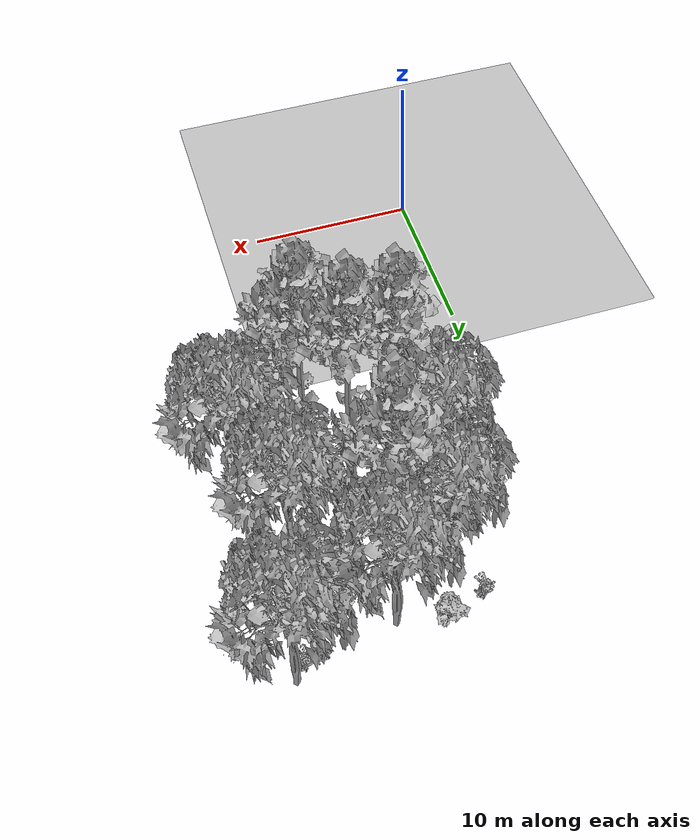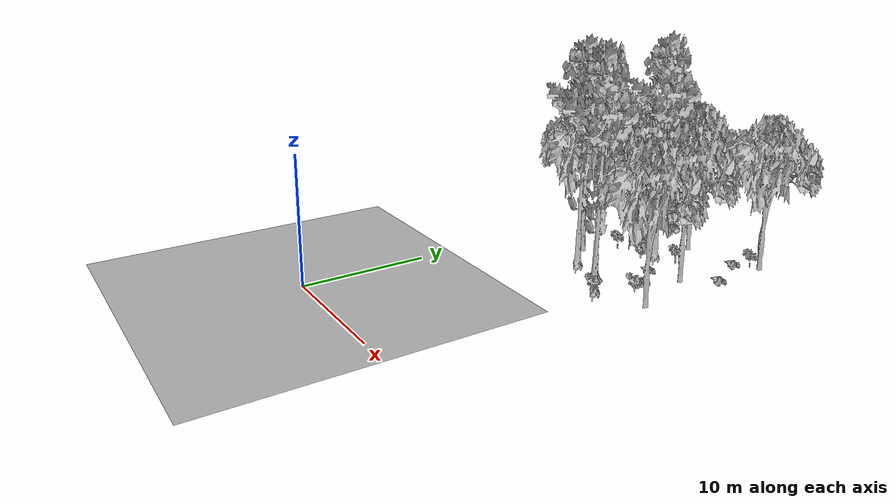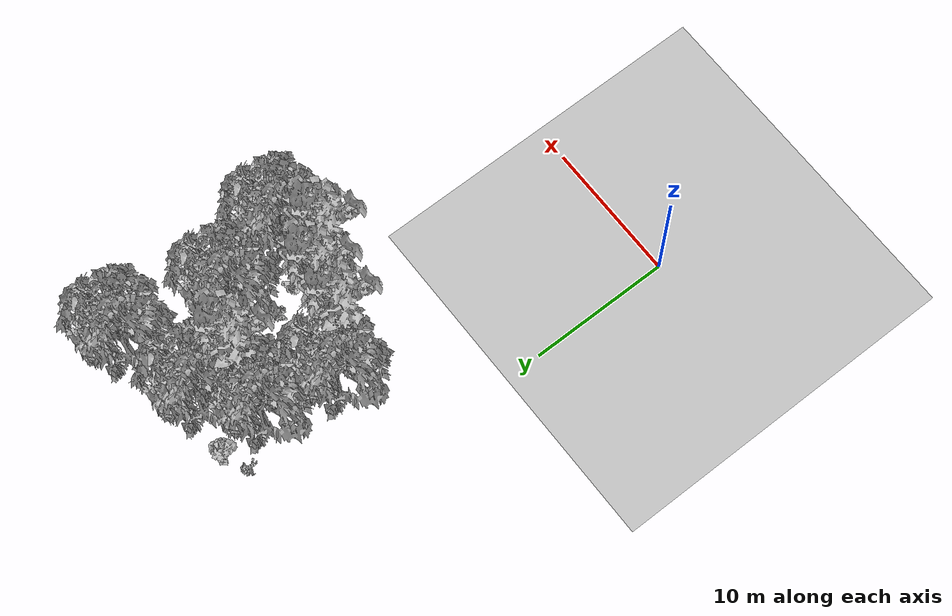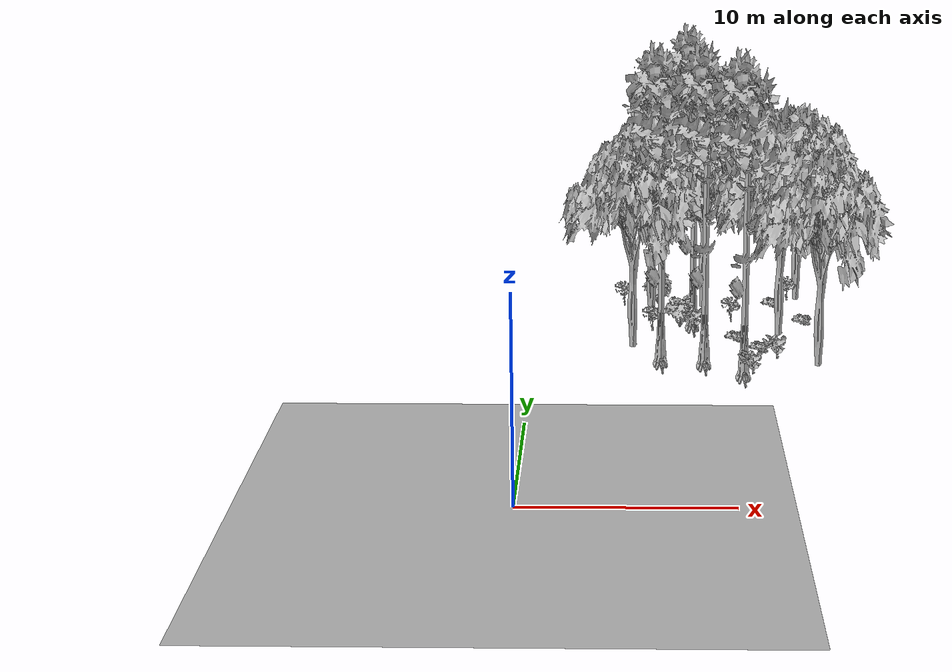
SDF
<sdf version="1.7">
 <world name="default">
  <model name="ground_plane">
   <static>1</static>
   <link name="link">
    <collision name="collision">
     <pose>-50 0 0 0 -0 0</pose>
     <geometry><plane><normal>0 0 1</normal><size>80 80</size></plane></geometry>
     <surface><contact><ode><min_depth>0.01</min_depth><max_vel>0</max_vel></ode></contact></surface>
    </collision>
    <visual name="grass">
     <cast_shadows>0</cast_shadows>
     <geometry>
      <mesh>
       <scale>0.46714285714285714 0.46714285714285714 0.1</scale>
       <uri>file://grass_plane/meshes/grass_plane.dae</uri>
      </mesh>
     </geometry>
    </visual>
   </link>
  </model>
  <model name="Tree 117">
   <static>1</static>
   <pose>5.402870050491956 21.748774080429428 0 1.57079 -0 0</pose>
   <link name="link">
    <collision name="collision">
     <geometry><mesh><scale>3.5 5 3.5</scale><uri>model://tree_2/meshes/tree_2.obj</uri></mesh></geometry>
    </collision>
    <visual name="visual">
     <geometry><mesh><scale>3.5 5 3.5</scale><uri>model://tree_2/meshes/tree_2.obj</uri></mesh></geometry>
    </visual>
   </link>
  </model>
  <model name="Tree 291">
   <static>1</static>
   <pose>6.542167297251503 26.611911763401423 0 1.57079 -0 0</pose>
   <link name="link">
    <collision name="collision">
     <geometry><mesh><scale>3.5 5 3.5</scale><uri>model://tree_2/meshes/tree_2.obj</uri></mesh></geometry>
    </collision>
    <visual name="visual">
     <geometry><mesh><scale>3.5 5 3.5</scale><uri>model://tree_2/meshes/tree_2.obj</uri></mesh></geometry>
    </visual>
   </link>
  </model>
  <model name="Tree 346">
   <static>1</static>
   <pose>11.453552056097458 17.775775433478998 0 1.57079 -0 0</pose>
   <link name="link">
    <collision name="collision">
     <geometry><mesh><scale>3.5 5 3.5</scale><uri>model://tree_9/meshes/tree_9.obj</uri></mesh></geometry>
    </collision>
    <visual name="visual">
     <geometry><mesh><scale>3.5 5 3.5</scale><uri>model://tree_9/meshes/tree_9.obj</uri></mesh></geometry>
    </visual>
   </link>
  </model>
  <model name="Tree 401">
   <static>1</static>
   <pose>9.399120692804779 19.60462234612234 0 1.57079 -0 0</pose>
   <link name="link">
    <collision name="collision">
     <geometry><mesh><scale>3.5 5 3.5</scale><uri>model://tree_9/meshes/tree_9.obj</uri></mesh></geometry>
    </collision>
    <visual name="visual">
     <geometry><mesh><scale>3.5 5 3.5</scale><uri>model://tree_9/meshes/tree_9.obj</uri></mesh></geometry>
    </visual>
   </link>
  </model>
  <model name="Tree 410">
   <static>1</static>
   <pose>9.693167146554188 29.07647159142809 0 1.57079 -0 0</pose>
   <link name="link">
    <collision name="collision">
     <geometry><mesh><scale>3.5 5 3.5</scale><uri>model://tree_2/meshes/tree_2.obj</uri></mesh></geometry>
    </collision>
    <visual name="visual">
     <geometry><mesh><scale>3.5 5 3.5</scale><uri>model://tree_2/meshes/tree_2.obj</uri></mesh></geometry>
    </visual>
   </link>
  </model>
  <model name="Tree 446">
   <static>1</static>
   <pose>15.500201437053988 18.74226883647647 0 1.57079 -0 0</pose>
   <link name="link">
    <collision name="collision">
     <geometry><mesh><scale>3.5 5 3.5</scale><uri>model://tree_2/meshes/tree_2.obj</uri></mesh></geometry>
    </collision>
    <visual name="visual">
     <geometry><mesh><scale>3.5 5 3.5</scale><uri>model://tree_2/meshes/tree_2.obj</uri></mesh></geometry>
    </visual>
   </link>
  </model>
  <model name="Tree 504">
   <static>1</static>
   <pose>7.013249019041503 19.92837328358575 0 1.57079 -0 0</pose>
   <link name="link">
    <collision name="collision">
     <geometry><mesh><scale>3.5 5 3.5</scale><uri>model://tree_9/meshes/tree_9.obj</uri></mesh></geometry>
    </collision>
    <visual name="visual">
     <geometry><mesh><scale>3.5 5 3.5</scale><uri>model://tree_9/meshes/tree_9.obj</uri></mesh></geometry>
    </visual>
   </link>
  </model>
  <model name="Tree 511">
   <static>1</static>
   <pose>15.404745781722717 30.639118200302008 0 1.57079 -0 0</pose>
   <link name="link">
    <collision name="collision">
     <geometry><mesh><scale>3.5 5 3.5</scale><uri>model://tree_2/meshes/tree_2.obj</uri></mesh></geometry>
    </collision>
    <visual name="visual">
     <geometry><mesh><scale>3.5 5 3.5</scale><uri>model://tree_2/meshes/tree_2.obj</uri></mesh></geometry>
    </visual>
   </link>
  </model>
  <model name="Tree 540">
   <static>1</static>
   <pose>13.782328889824953 23.8922013195142 0 1.57079 -0 0</pose>
   <link name="link">
    <collision name="collision">
     <geometry><mesh><scale>3.5 5 3.5</scale><uri>model://tree_2/meshes/tree_2.obj</uri></mesh></geometry>
    </collision>
    <visual name="visual">
     <geometry><mesh><scale>3.5 5 3.5</scale><uri>model://tree_2/meshes/tree_2.obj</uri></mesh></geometry>
    </visual>
   </link>
  </model>
  <model name="Tree 606">
   <static>1</static>
   <pose>9.028341318979301 26.18306204199699 0 1.57079 -0 0</pose>
   <link name="link">
    <collision name="collision">
     <geometry><mesh><scale>3.5 5 3.5</scale><uri>model://tree_9/meshes/tree_9.obj</uri></mesh></geometry>
    </collision>
    <visual name="visual">
     <geometry><mesh><scale>3.5 5 3.5</scale><uri>model://tree_9/meshes/tree_9.obj</uri></mesh></geometry>
    </visual>
   </link>
  </model>
  <model name="Bush 83">
   <static>1</static>
   <pose>11.929028616848399 17.246229125629853 0 1.57079 -0 0</pose>
   <link name="link">
    <collision name="collision">
     <geometry><mesh><scale>2 2 2</scale><uri>model://bush_0/meshes/bush_0.obj</uri></mesh></geometry>
     <surface><contact><collide_without_contact>false</collide_without_contact></contact></surface>
    </collision>
    <visual name="visual">
     <geometry><mesh><scale>2 2 2</scale><uri>model://bush_0/meshes/bush_0.obj</uri></mesh></geometry>
    </visual>
   </link>
  </model>
  <model name="Bush 107">
   <static>1</static>
   <pose>5.07198328747387 29.21494606887127 0 1.57079 -0 0</pose>
   <link name="link">
    <collision name="collision">
     <geometry><mesh><scale>2 2 2</scale><uri>model://bush_5/meshes/bush_5.obj</uri></mesh></geometry>
     <surface><contact><collide_without_contact>false</collide_without_contact></contact></surface>
    </collision>
    <visual name="visual">
     <geometry><mesh><scale>2 2 2</scale><uri>model://bush_5/meshes/bush_5.obj</uri></mesh></geometry>
    </visual>
   </link>
  </model>
  <model name="Bush 112">
   <static>1</static>
   <pose>8.249603655136816 25.165325156428864 0 1.57079 -0 0</pose>
   <link name="link">
    <collision name="collision">
     <geometry><mesh><scale>2 2 2</scale><uri>model://bush_1/meshes/bush_1.obj</uri></mesh></geometry>
     <surface><contact><collide_without_contact>false</collide_without_contact></contact></surface>
    </collision>
    <visual name="visual">
     <geometry><mesh><scale>2 2 2</scale><uri>model://bush_1/meshes/bush_1.obj</uri></mesh></geometry>
    </visual>
   </link>
  </model>
  <model name="Bush 155">
   <static>1</static>
   <pose>9.098387042104541 24.598237175273738 0 1.57079 -0 0</pose>
   <link name="link">
    <collision name="collision">
     <geometry><mesh><scale>2 2 2</scale><uri>model://bush_0/meshes/bush_0.obj</uri></mesh></geometry>
     <surface><contact><collide_without_contact>false</collide_without_contact></contact></surface>
    </collision>
    <visual name="visual">
     <geometry><mesh><scale>2 2 2</scale><uri>model://bush_0/meshes/bush_0.obj</uri></mesh></geometry>
    </visual>
   </link>
  </model>
  <model name="Bush 188">
   <static>1</static>
   <pose>13.922237532088616 29.514391028612323 0 1.57079 -0 0</pose>
   <link name="link">
    <collision name="collision">
     <geometry><mesh><scale>2 2 2</scale><uri>model://bush_2/meshes/bush_2.obj</uri></mesh></geometry>
     <surface><contact><collide_without_contact>false</collide_without_contact></contact></surface>
    </collision>
    <visual name="visual">
     <geometry><mesh><scale>2 2 2</scale><uri>model://bush_2/meshes/bush_2.obj</uri></mesh></geometry>
    </visual>
   </link>
  </model>
  <model name="Bush 214">
   <static>1</static>
   <pose>15.450335029292162 26.251346573411098 0 1.57079 -0 0</pose>
   <link name="link">
    <collision name="collision">
     <geometry><mesh><scale>2 2 2</scale><uri>model://bush_2/meshes/bush_2.obj</uri></mesh></geometry>
     <surface><contact><collide_without_contact>false</collide_without_contact></contact></surface>
    </collision>
    <visual name="visual">
     <geometry><mesh><scale>2 2 2</scale><uri>model://bush_2/meshes/bush_2.obj</uri></mesh></geometry>
    </visual>
   </link>
  </model>
  <model name="Bush 327">
   <static>1</static>
   <pose>12.586086815047842 21.404537660475846 0 1.57079 -0 0</pose>
   <link name="link">
    <collision name="collision">
     <geometry><mesh><scale>2 2 2</scale><uri>model://bush_2/meshes/bush_2.obj</uri></mesh></geometry>
     <surface><contact><collide_without_contact>false</collide_without_contact></contact></surface>
    </collision>
    <visual name="visual">
     <geometry><mesh><scale>2 2 2</scale><uri>model://bush_2/meshes/bush_2.obj</uri></mesh></geometry>
    </visual>
   </link>
  </model>
  <model name="Bush 372">
   <static>1</static>
   <pose>6.658015366991279 24.42609510029459 0 1.57079 -0 0</pose>
   <link name="link">
    <collision name="collision">
     <geometry><mesh><scale>2 2 2</scale><uri>model://bush_5/meshes/bush_5.obj</uri></mesh></geometry>
     <surface><contact><collide_without_contact>false</collide_without_contact></contact></surface>
    </collision>
    <visual name="visual">
     <geometry><mesh><scale>2 2 2</scale><uri>model://bush_5/meshes/bush_5.obj</uri></mesh></geometry>
    </visual>
   </link>
  </model>
  <model name="Bush 393">
   <static>1</static>
   <pose>14.93331597669809 30.29825164506265 0 1.57079 -0 0</pose>
   <link name="link">
    <collision name="collision">
     <geometry><mesh><scale>2 2 2</scale><uri>model://bush_5/meshes/bush_5.obj</uri></mesh></geometry>
     <surface><contact><collide_without_contact>false</collide_without_contact></contact></surface>
    </collision>
    <visual name="visual">
     <geometry><mesh><scale>2 2 2</scale><uri>model://bush_5/meshes/bush_5.obj</uri></mesh></geometry>
    </visual>
   </link>
  </model>
  <model name="Bush 411">
   <static>1</static>
   <pose>11.330518841054577 23.195064566801946 0 1.57079 -0 0</pose>
   <link name="link">
    <collision name="collision">
     <geometry><mesh><scale>2 2 2</scale><uri>model://bush_2/meshes/bush_2.obj</uri></mesh></geometry>
     <surface><contact><collide_without_contact>false</collide_without_contact></contact></surface>
    </collision>
    <visual name="visual">
     <geometry><mesh><scale>2 2 2</scale><uri>model://bush_2/meshes/bush_2.obj</uri></mesh></geometry>
    </visual>
   </link>
  </model>
  <model name="Bush 423">
   <static>1</static>
   <pose>11.291755643335513 26.15007592132875 0 1.57079 -0 0</pose>
   <link name="link">
    <collision name="collision">
     <geometry><mesh><scale>2 2 2</scale><uri>model://bush_5/meshes/bush_5.obj</uri></mesh></geometry>
     <surface><contact><collide_without_contact>false</collide_without_contact></contact></surface>
    </collision>
    <visual name="visual">
     <geometry><mesh><scale>2 2 2</scale><uri>model://bush_5/meshes/bush_5.obj</uri></mesh></geometry>
    </visual>
   </link>
  </model>
  <model name="Bush 555">
   <static>1</static>
   <pose>13.441209655610194 19.79449040453906 0 1.57079 -0 0</pose>
   <link name="link">
    <collision name="collision">
     <geometry><mesh><scale>2 2 2</scale><uri>model://bush_0/meshes/bush_0.obj</uri></mesh></geometry>
     <surface><contact><collide_without_contact>false</collide_without_contact></contact></surface>
    </collision>
    <visual name="visual">
     <geometry><mesh><scale>2 2 2</scale><uri>model://bush_0/meshes/bush_0.obj</uri></mesh></geometry>
    </visual>
   </link>
  </model>
  <model name="Bush 624">
   <static>1</static>
   <pose>7.093883697857073 29.547642691537604 0 1.57079 -0 0</pose>
   <link name="link">
    <collision name="collision">
     <geometry><mesh><scale>2 2 2</scale><uri>model://bush_1/meshes/bush_1.obj</uri></mesh></geometry>
     <surface><contact><collide_without_contact>false</collide_without_contact></contact></surface>
    </collision>
    <visual name="visual">
     <geometry><mesh><scale>2 2 2</scale><uri>model://bush_1/meshes/bush_1.obj</uri></mesh></geometry>
    </visual>
   </link>
  </model>
 </world>
</sdf>
